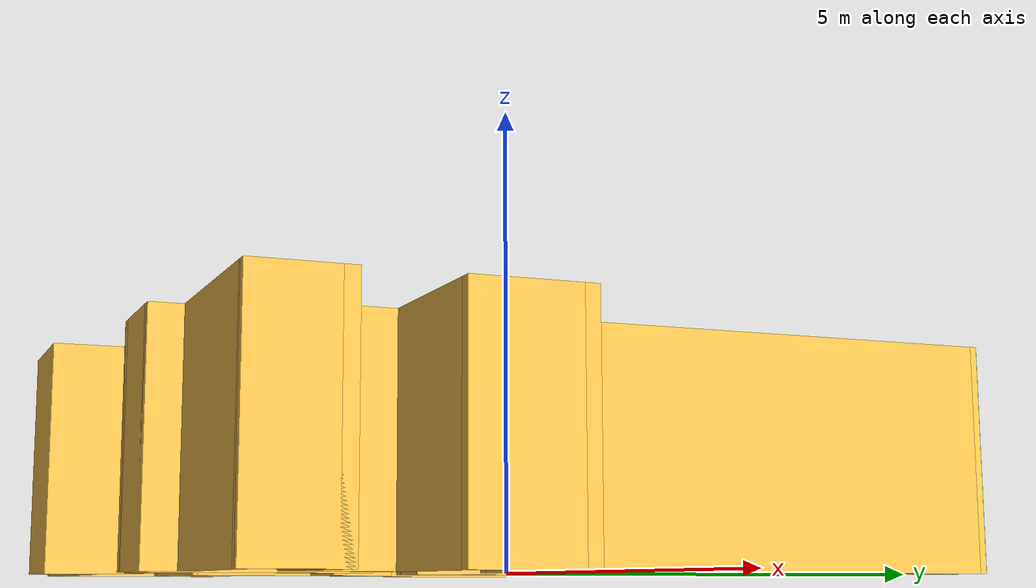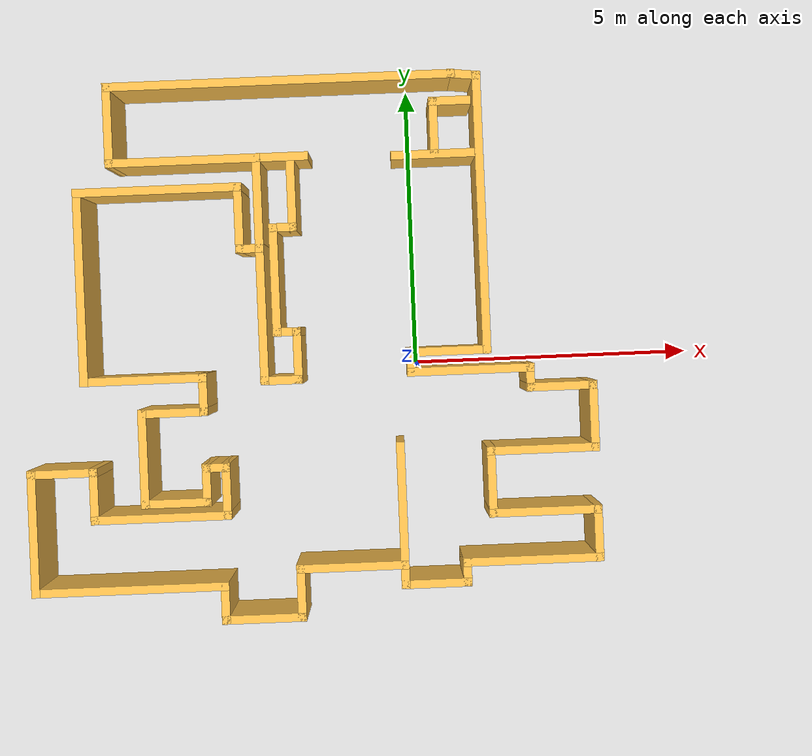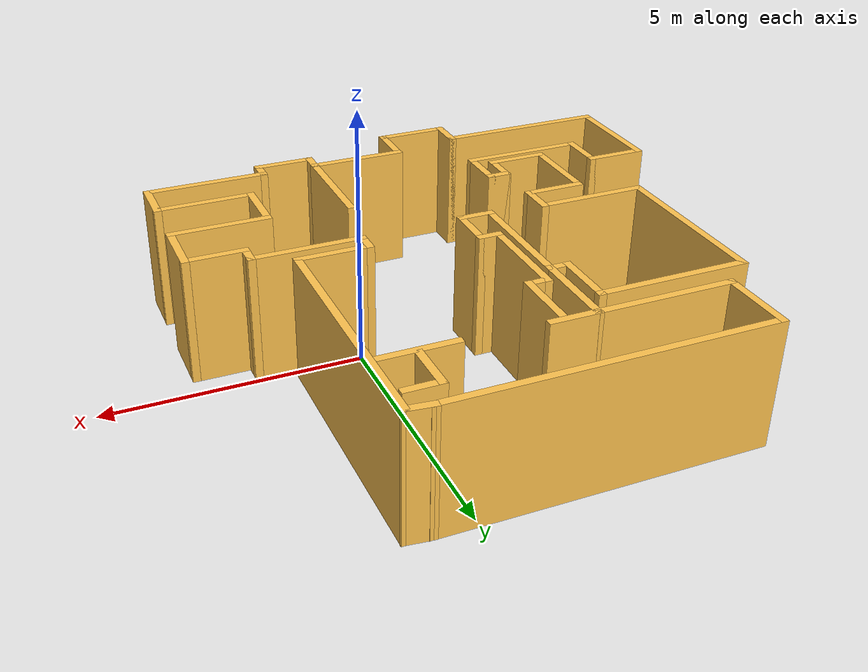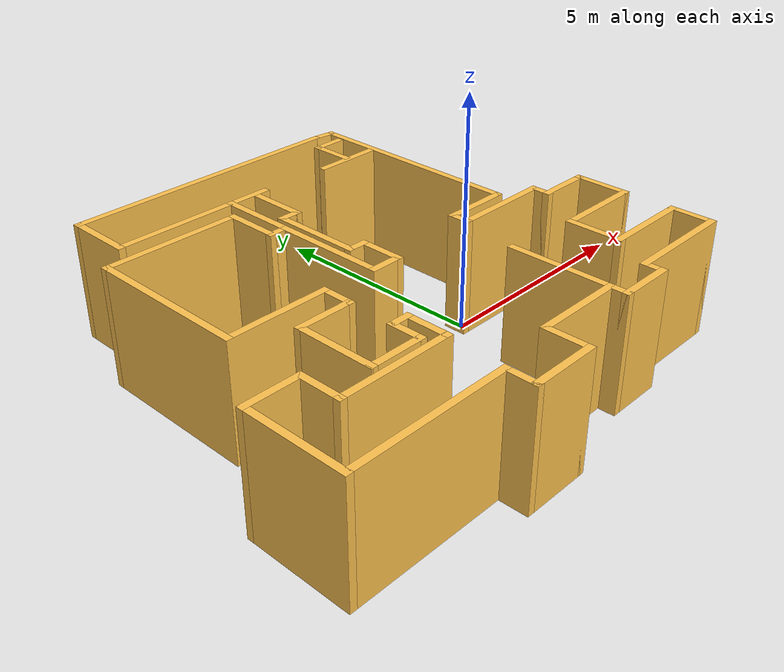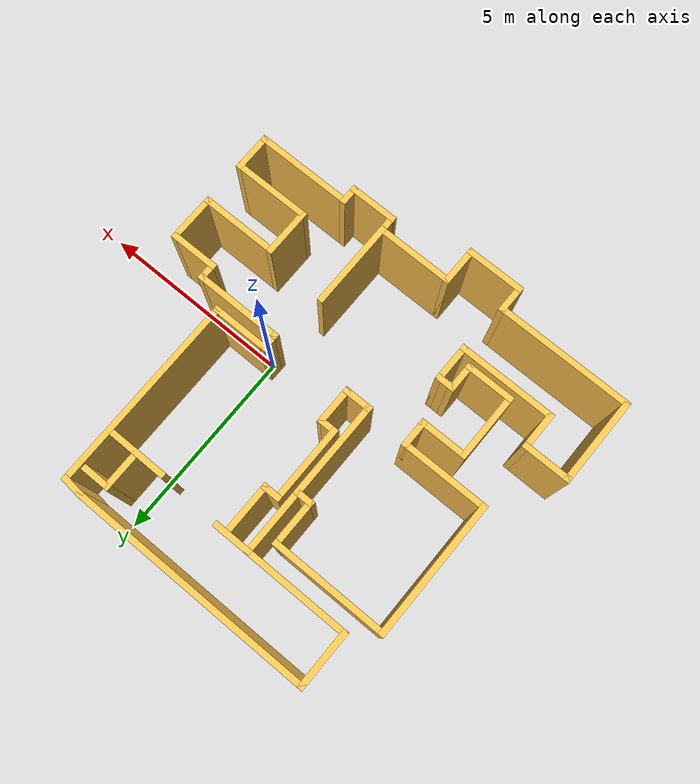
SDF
<?xml version='1.0'?>
<sdf version='1.6'>
  <model name='map_78'>
    <pose frame=''>-1.91325 0.358957 0 0 -0 0</pose>
    <link name='Wall_0'>
      <collision name='Wall_0_Collision'>
        <geometry>
          <box>
            <size>6.25 0.15 2.5</size>
          </box>
        </geometry>
        <pose frame=''>0 0 1.25 0 -0 0</pose>
      </collision>
      <visual name='Wall_0_Visual'>
        <pose frame=''>0 0 1.25 0 -0 0</pose>
        <geometry>
          <box>
            <size>6.25 0.15 2.5</size>
          </box>
        </geometry>
        <material>
          <script>
            <uri>file://media/materials/scripts/gazebo.material</uri>
            <name>Gazebo/Grey</name>
          </script>
          <ambient>1 0.764706 0.305882 1</ambient>
        </material>
        <meta>
          <layer>0</layer>
        </meta>
      </visual>
      <pose frame=''>-0.35 4.74609 0 0 -0 3.14159</pose>
    </link>
    <link name='Wall_12'>
      <collision name='Wall_12_Collision'>
        <geometry>
          <box>
            <size>0.75 0.15 2.5</size>
          </box>
        </geometry>
        <pose frame=''>0 0 1.25 0 -0 0</pose>
      </collision>
      <visual name='Wall_12_Visual'>
        <pose frame=''>0 0 1.25 0 -0 0</pose>
        <geometry>
          <box>
            <size>0.75 0.15 2.5</size>
          </box>
        </geometry>
        <material>
          <script>
            <uri>file://media/materials/scripts/gazebo.material</uri>
            <name>Gazebo/Grey</name>
          </script>
          <ambient>1 0.764706 0.305882 1</ambient>
        </material>
        <meta>
          <layer>0</layer>
        </meta>
      </visual>
      <pose frame=''>-1.9 -0.753912 0 0 -0 -1.5708</pose>
    </link>
    <link name='Wall_13'>
      <collision name='Wall_13_Collision'>
        <geometry>
          <box>
            <size>1.25 0.15 2.5</size>
          </box>
        </geometry>
        <pose frame=''>0 0 1.25 0 -0 0</pose>
      </collision>
      <visual name='Wall_13_Visual'>
        <pose frame=''>0 0 1.25 0 -0 0</pose>
        <geometry>
          <box>
            <size>1.25 0.15 2.5</size>
          </box>
        </geometry>
        <material>
          <script>
            <uri>file://media/materials/scripts/gazebo.material</uri>
            <name>Gazebo/Grey</name>
          </script>
          <ambient>1 0.764706 0.305882 1</ambient>
        </material>
        <meta>
          <layer>0</layer>
        </meta>
      </visual>
      <pose frame=''>-2.45 -1.05391 0 0 -0 3.14159</pose>
    </link>
    <link name='Wall_14'>
      <collision name='Wall_14_Collision'>
        <geometry>
          <box>
            <size>1.75 0.15 2.5</size>
          </box>
        </geometry>
        <pose frame=''>0 0 1.25 0 -0 0</pose>
      </collision>
      <visual name='Wall_14_Visual'>
        <pose frame=''>0 0 1.25 0 -0 0</pose>
        <geometry>
          <box>
            <size>1.75 0.15 2.5</size>
          </box>
        </geometry>
        <material>
          <script>
            <uri>file://media/materials/scripts/gazebo.material</uri>
            <name>Gazebo/Grey</name>
          </script>
          <ambient>1 0.764706 0.305882 1</ambient>
        </material>
        <meta>
          <layer>0</layer>
        </meta>
      </visual>
      <pose frame=''>-3 -1.85391 0 0 -0 -1.5708</pose>
    </link>
    <link name='Wall_15'>
      <collision name='Wall_15_Collision'>
        <geometry>
          <box>
            <size>1.25 0.15 2.5</size>
          </box>
        </geometry>
        <pose frame=''>0 0 1.25 0 -0 0</pose>
      </collision>
      <visual name='Wall_15_Visual'>
        <pose frame=''>0 0 1.25 0 -0 0</pose>
        <geometry>
          <box>
            <size>1.25 0.15 2.5</size>
          </box>
        </geometry>
        <material>
          <script>
            <uri>file://media/materials/scripts/gazebo.material</uri>
            <name>Gazebo/Grey</name>
          </script>
          <ambient>1 0.764706 0.305882 1</ambient>
        </material>
        <meta>
          <layer>0</layer>
        </meta>
      </visual>
      <pose frame=''>-2.45 -2.65391 0 0 -0 0</pose>
    </link>
    <link name='Wall_16'>
      <collision name='Wall_16_Collision'>
        <geometry>
          <box>
            <size>0.75 0.15 2.5</size>
          </box>
        </geometry>
        <pose frame=''>0 0 1.25 0 -0 0</pose>
      </collision>
      <visual name='Wall_16_Visual'>
        <pose frame=''>0 0 1.25 0 -0 0</pose>
        <geometry>
          <box>
            <size>0.75 0.15 2.5</size>
          </box>
        </geometry>
        <material>
          <script>
            <uri>file://media/materials/scripts/gazebo.material</uri>
            <name>Gazebo/Grey</name>
          </script>
          <ambient>1 0.764706 0.305882 1</ambient>
        </material>
        <meta>
          <layer>0</layer>
        </meta>
      </visual>
      <pose frame=''>-1.9 -2.35391 0 0 -0 1.5708</pose>
    </link>
    <link name='Wall_17'>
      <collision name='Wall_17_Collision'>
        <geometry>
          <box>
            <size>0.5 0.15 2.5</size>
          </box>
        </geometry>
        <pose frame=''>0 0 1.25 0 -0 0</pose>
      </collision>
      <visual name='Wall_17_Visual'>
        <pose frame=''>0 0 1.25 0 -0 0</pose>
        <geometry>
          <box>
            <size>0.5 0.15 2.5</size>
          </box>
        </geometry>
        <material>
          <script>
            <uri>file://media/materials/scripts/gazebo.material</uri>
            <name>Gazebo/Grey</name>
          </script>
          <ambient>1 0.764706 0.305882 1</ambient>
        </material>
        <meta>
          <layer>0</layer>
        </meta>
      </visual>
      <pose frame=''>-1.725 -2.05391 0 0 -0 0</pose>
    </link>
    <link name='Wall_18'>
      <collision name='Wall_18_Collision'>
        <geometry>
          <box>
            <size>1 0.15 2.5</size>
          </box>
        </geometry>
        <pose frame=''>0 0 1.25 0 -0 0</pose>
      </collision>
      <visual name='Wall_18_Visual'>
        <pose frame=''>0 0 1.25 0 -0 0</pose>
        <geometry>
          <box>
            <size>1 0.15 2.5</size>
          </box>
        </geometry>
        <material>
          <script>
            <uri>file://media/materials/scripts/gazebo.material</uri>
            <name>Gazebo/Grey</name>
          </script>
          <ambient>1 0.764706 0.305882 1</ambient>
        </material>
        <meta>
          <layer>0</layer>
        </meta>
      </visual>
      <pose frame=''>-1.55 -2.47891 0 0 -0 -1.5708</pose>
    </link>
    <link name='Wall_19'>
      <collision name='Wall_19_Collision'>
        <geometry>
          <box>
            <size>2.5 0.15 2.5</size>
          </box>
        </geometry>
        <pose frame=''>0 0 1.25 0 -0 0</pose>
      </collision>
      <visual name='Wall_19_Visual'>
        <pose frame=''>0 0 1.25 0 -0 0</pose>
        <geometry>
          <box>
            <size>2.5 0.15 2.5</size>
          </box>
        </geometry>
        <material>
          <script>
            <uri>file://media/materials/scripts/gazebo.material</uri>
            <name>Gazebo/Grey</name>
          </script>
          <ambient>1 0.764706 0.305882 1</ambient>
        </material>
        <meta>
          <layer>0</layer>
        </meta>
      </visual>
      <pose frame=''>-2.725 -2.90391 0 0 -0 3.14159</pose>
    </link>
    <link name='Wall_2'>
      <collision name='Wall_2_Collision'>
        <geometry>
          <box>
            <size>1.5 0.15 2.5</size>
          </box>
        </geometry>
        <pose frame=''>0 0 1.25 0 -0 0</pose>
      </collision>
      <visual name='Wall_2_Visual'>
        <pose frame=''>0 0 1.25 0 -0 0</pose>
        <geometry>
          <box>
            <size>1.5 0.15 2.5</size>
          </box>
        </geometry>
        <material>
          <script>
            <uri>file://media/materials/scripts/gazebo.material</uri>
            <name>Gazebo/Grey</name>
          </script>
          <ambient>1 0.764706 0.305882 1</ambient>
        </material>
        <meta>
          <layer>0</layer>
        </meta>
      </visual>
      <pose frame=''>-3.4 4.07109 0 0 -0 -1.5708</pose>
    </link>
    <link name='Wall_20'>
      <collision name='Wall_20_Collision'>
        <geometry>
          <box>
            <size>1 0.15 2.5</size>
          </box>
        </geometry>
        <pose frame=''>0 0 1.25 0 -0 0</pose>
      </collision>
      <visual name='Wall_20_Visual'>
        <pose frame=''>0 0 1.25 0 -0 0</pose>
        <geometry>
          <box>
            <size>1 0.15 2.5</size>
          </box>
        </geometry>
        <material>
          <script>
            <uri>file://media/materials/scripts/gazebo.material</uri>
            <name>Gazebo/Grey</name>
          </script>
          <ambient>1 0.764706 0.305882 1</ambient>
        </material>
        <meta>
          <layer>0</layer>
        </meta>
      </visual>
      <pose frame=''>-3.9 -2.47891 0 0 -0 1.5708</pose>
    </link>
    <link name='Wall_21'>
      <collision name='Wall_21_Collision'>
        <geometry>
          <box>
            <size>1.25 0.15 2.5</size>
          </box>
        </geometry>
        <pose frame=''>0 0 1.25 0 -0 0</pose>
      </collision>
      <visual name='Wall_21_Visual'>
        <pose frame=''>0 0 1.25 0 -0 0</pose>
        <geometry>
          <box>
            <size>1.25 0.15 2.5</size>
          </box>
        </geometry>
        <material>
          <script>
            <uri>file://media/materials/scripts/gazebo.material</uri>
            <name>Gazebo/Grey</name>
          </script>
          <ambient>1 0.764706 0.305882 1</ambient>
        </material>
        <meta>
          <layer>0</layer>
        </meta>
      </visual>
      <pose frame=''>-4.45 -2.05391 0 0 -0 3.14159</pose>
    </link>
    <link name='Wall_22'>
      <collision name='Wall_22_Collision'>
        <geometry>
          <box>
            <size>2.25 0.15 2.5</size>
          </box>
        </geometry>
        <pose frame=''>0 0 1.25 0 -0 0</pose>
      </collision>
      <visual name='Wall_22_Visual'>
        <pose frame=''>0 0 1.25 0 -0 0</pose>
        <geometry>
          <box>
            <size>2.25 0.15 2.5</size>
          </box>
        </geometry>
        <material>
          <script>
            <uri>file://media/materials/scripts/gazebo.material</uri>
            <name>Gazebo/Grey</name>
          </script>
          <ambient>1 0.764706 0.305882 1</ambient>
        </material>
        <meta>
          <layer>0</layer>
        </meta>
      </visual>
      <pose frame=''>-5 -3.10391 0 0 -0 -1.5708</pose>
    </link>
    <link name='Wall_23'>
      <collision name='Wall_23_Collision'>
        <geometry>
          <box>
            <size>3.5 0.15 2.5</size>
          </box>
        </geometry>
        <pose frame=''>0 0 1.25 0 -0 0</pose>
      </collision>
      <visual name='Wall_23_Visual'>
        <pose frame=''>0 0 1.25 0 -0 0</pose>
        <geometry>
          <box>
            <size>3.5 0.15 2.5</size>
          </box>
        </geometry>
        <material>
          <script>
            <uri>file://media/materials/scripts/gazebo.material</uri>
            <name>Gazebo/Grey</name>
          </script>
          <ambient>1 0.764706 0.305882 1</ambient>
        </material>
        <meta>
          <layer>0</layer>
        </meta>
      </visual>
      <pose frame=''>-3.325 -4.15391 0 0 -0 0</pose>
    </link>
    <link name='Wall_24'>
      <collision name='Wall_24_Collision'>
        <geometry>
          <box>
            <size>0.75 0.15 2.5</size>
          </box>
        </geometry>
        <pose frame=''>0 0 1.25 0 -0 0</pose>
      </collision>
      <visual name='Wall_24_Visual'>
        <pose frame=''>0 0 1.25 0 -0 0</pose>
        <geometry>
          <box>
            <size>0.75 0.15 2.5</size>
          </box>
        </geometry>
        <material>
          <script>
            <uri>file://media/materials/scripts/gazebo.material</uri>
            <name>Gazebo/Grey</name>
          </script>
          <ambient>1 0.764706 0.305882 1</ambient>
        </material>
        <meta>
          <layer>0</layer>
        </meta>
      </visual>
      <pose frame=''>-1.65 -4.45391 0 0 -0 -1.5708</pose>
    </link>
    <link name='Wall_25'>
      <collision name='Wall_25_Collision'>
        <geometry>
          <box>
            <size>1.5 0.15 2.5</size>
          </box>
        </geometry>
        <pose frame=''>0 0 1.25 0 -0 0</pose>
      </collision>
      <visual name='Wall_25_Visual'>
        <pose frame=''>0 0 1.25 0 -0 0</pose>
        <geometry>
          <box>
            <size>1.5 0.15 2.5</size>
          </box>
        </geometry>
        <material>
          <script>
            <uri>file://media/materials/scripts/gazebo.material</uri>
            <name>Gazebo/Grey</name>
          </script>
          <ambient>1 0.764706 0.305882 1</ambient>
        </material>
        <meta>
          <layer>0</layer>
        </meta>
      </visual>
      <pose frame=''>-0.975 -4.75391 0 0 -0 0</pose>
    </link>
    <link name='Wall_26'>
      <collision name='Wall_26_Collision'>
        <geometry>
          <box>
            <size>1 0.15 2.5</size>
          </box>
        </geometry>
        <pose frame=''>0 0 1.25 0 -0 0</pose>
      </collision>
      <visual name='Wall_26_Visual'>
        <pose frame=''>0 0 1.25 0 -0 0</pose>
        <geometry>
          <box>
            <size>1 0.15 2.5</size>
          </box>
        </geometry>
        <material>
          <script>
            <uri>file://media/materials/scripts/gazebo.material</uri>
            <name>Gazebo/Grey</name>
          </script>
          <ambient>1 0.764706 0.305882 1</ambient>
        </material>
        <meta>
          <layer>0</layer>
        </meta>
      </visual>
      <pose frame=''>-0.3 -4.32891 0 0 -0 1.5708</pose>
    </link>
    <link name='Wall_27'>
      <collision name='Wall_27_Collision'>
        <geometry>
          <box>
            <size>2 0.15 2.5</size>
          </box>
        </geometry>
        <pose frame=''>0 0 1.25 0 -0 0</pose>
      </collision>
      <visual name='Wall_27_Visual'>
        <pose frame=''>0 0 1.25 0 -0 0</pose>
        <geometry>
          <box>
            <size>2 0.15 2.5</size>
          </box>
        </geometry>
        <material>
          <script>
            <uri>file://media/materials/scripts/gazebo.material</uri>
            <name>Gazebo/Grey</name>
          </script>
          <ambient>1 0.764706 0.305882 1</ambient>
        </material>
        <meta>
          <layer>0</layer>
        </meta>
      </visual>
      <pose frame=''>0.625 -3.90391 0 0 -0 0</pose>
    </link>
    <link name='Wall_28'>
      <collision name='Wall_28_Collision'>
        <geometry>
          <box>
            <size>0.5 0.15 2.5</size>
          </box>
        </geometry>
        <pose frame=''>0 0 1.25 0 -0 0</pose>
      </collision>
      <visual name='Wall_28_Visual'>
        <pose frame=''>0 0 1.25 0 -0 0</pose>
        <geometry>
          <box>
            <size>0.5 0.15 2.5</size>
          </box>
        </geometry>
        <material>
          <script>
            <uri>file://media/materials/scripts/gazebo.material</uri>
            <name>Gazebo/Grey</name>
          </script>
          <ambient>1 0.764706 0.305882 1</ambient>
        </material>
        <meta>
          <layer>0</layer>
        </meta>
      </visual>
      <pose frame=''>1.55 -4.07891 0 0 -0 -1.5708</pose>
    </link>
    <link name='Wall_29'>
      <collision name='Wall_29_Collision'>
        <geometry>
          <box>
            <size>1.25 0.15 2.5</size>
          </box>
        </geometry>
        <pose frame=''>0 0 1.25 0 -0 0</pose>
      </collision>
      <visual name='Wall_29_Visual'>
        <pose frame=''>0 0 1.25 0 -0 0</pose>
        <geometry>
          <box>
            <size>1.25 0.15 2.5</size>
          </box>
        </geometry>
        <material>
          <script>
            <uri>file://media/materials/scripts/gazebo.material</uri>
            <name>Gazebo/Grey</name>
          </script>
          <ambient>1 0.764706 0.305882 1</ambient>
        </material>
        <meta>
          <layer>0</layer>
        </meta>
      </visual>
      <pose frame=''>2.1 -4.25391 0 0 -0 0</pose>
    </link>
    <link name='Wall_3'>
      <collision name='Wall_3_Collision'>
        <geometry>
          <box>
            <size>2.75 0.15 2.5</size>
          </box>
        </geometry>
        <pose frame=''>0 0 1.25 0 -0 0</pose>
      </collision>
      <visual name='Wall_3_Visual'>
        <pose frame=''>0 0 1.25 0 -0 0</pose>
        <geometry>
          <box>
            <size>2.75 0.15 2.5</size>
          </box>
        </geometry>
        <material>
          <script>
            <uri>file://media/materials/scripts/gazebo.material</uri>
            <name>Gazebo/Grey</name>
          </script>
          <ambient>1 0.764706 0.305882 1</ambient>
        </material>
        <meta>
          <layer>0</layer>
        </meta>
      </visual>
      <pose frame=''>-2.1 3.39609 0 0 -0 0</pose>
    </link>
    <link name='Wall_30'>
      <collision name='Wall_30_Collision'>
        <geometry>
          <box>
            <size>0.5 0.15 2.5</size>
          </box>
        </geometry>
        <pose frame=''>0 0 1.25 0 -0 0</pose>
      </collision>
      <visual name='Wall_30_Visual'>
        <pose frame=''>0 0 1.25 0 -0 0</pose>
        <geometry>
          <box>
            <size>0.5 0.15 2.5</size>
          </box>
        </geometry>
        <material>
          <script>
            <uri>file://media/materials/scripts/gazebo.material</uri>
            <name>Gazebo/Grey</name>
          </script>
          <ambient>1 0.764706 0.305882 1</ambient>
        </material>
        <meta>
          <layer>0</layer>
        </meta>
      </visual>
      <pose frame=''>2.65 -4.07891 0 0 -0 1.5708</pose>
    </link>
    <link name='Wall_31'>
      <collision name='Wall_31_Collision'>
        <geometry>
          <box>
            <size>2.5 0.15 2.5</size>
          </box>
        </geometry>
        <pose frame=''>0 0 1.25 0 -0 0</pose>
      </collision>
      <visual name='Wall_31_Visual'>
        <pose frame=''>0 0 1.25 0 -0 0</pose>
        <geometry>
          <box>
            <size>2.5 0.15 2.5</size>
          </box>
        </geometry>
        <material>
          <script>
            <uri>file://media/materials/scripts/gazebo.material</uri>
            <name>Gazebo/Grey</name>
          </script>
          <ambient>1 0.764706 0.305882 1</ambient>
        </material>
        <meta>
          <layer>0</layer>
        </meta>
      </visual>
      <pose frame=''>3.825 -3.90391 0 0 -0 0</pose>
    </link>
    <link name='Wall_32'>
      <collision name='Wall_32_Collision'>
        <geometry>
          <box>
            <size>1 0.15 2.5</size>
          </box>
        </geometry>
        <pose frame=''>0 0 1.25 0 -0 0</pose>
      </collision>
      <visual name='Wall_32_Visual'>
        <pose frame=''>0 0 1.25 0 -0 0</pose>
        <geometry>
          <box>
            <size>1 0.15 2.5</size>
          </box>
        </geometry>
        <material>
          <script>
            <uri>file://media/materials/scripts/gazebo.material</uri>
            <name>Gazebo/Grey</name>
          </script>
          <ambient>1 0.764706 0.305882 1</ambient>
        </material>
        <meta>
          <layer>0</layer>
        </meta>
      </visual>
      <pose frame=''>5 -3.47891 0 0 -0 1.5708</pose>
    </link>
    <link name='Wall_33'>
      <collision name='Wall_33_Collision'>
        <geometry>
          <box>
            <size>2 0.15 2.5</size>
          </box>
        </geometry>
        <pose frame=''>0 0 1.25 0 -0 0</pose>
      </collision>
      <visual name='Wall_33_Visual'>
        <pose frame=''>0 0 1.25 0 -0 0</pose>
        <geometry>
          <box>
            <size>2 0.15 2.5</size>
          </box>
        </geometry>
        <material>
          <script>
            <uri>file://media/materials/scripts/gazebo.material</uri>
            <name>Gazebo/Grey</name>
          </script>
          <ambient>1 0.764706 0.305882 1</ambient>
        </material>
        <meta>
          <layer>0</layer>
        </meta>
      </visual>
      <pose frame=''>4.075 -3.05391 0 0 -0 3.14159</pose>
    </link>
    <link name='Wall_34'>
      <collision name='Wall_34_Collision'>
        <geometry>
          <box>
            <size>1.25 0.15 2.5</size>
          </box>
        </geometry>
        <pose frame=''>0 0 1.25 0 -0 0</pose>
      </collision>
      <visual name='Wall_34_Visual'>
        <pose frame=''>0 0 1.25 0 -0 0</pose>
        <geometry>
          <box>
            <size>1.25 0.15 2.5</size>
          </box>
        </geometry>
        <material>
          <script>
            <uri>file://media/materials/scripts/gazebo.material</uri>
            <name>Gazebo/Grey</name>
          </script>
          <ambient>1 0.764706 0.305882 1</ambient>
        </material>
        <meta>
          <layer>0</layer>
        </meta>
      </visual>
      <pose frame=''>3.15 -2.50391 0 0 -0 1.5708</pose>
    </link>
    <link name='Wall_35'>
      <collision name='Wall_35_Collision'>
        <geometry>
          <box>
            <size>2 0.15 2.5</size>
          </box>
        </geometry>
        <pose frame=''>0 0 1.25 0 -0 0</pose>
      </collision>
      <visual name='Wall_35_Visual'>
        <pose frame=''>0 0 1.25 0 -0 0</pose>
        <geometry>
          <box>
            <size>2 0.15 2.5</size>
          </box>
        </geometry>
        <material>
          <script>
            <uri>file://media/materials/scripts/gazebo.material</uri>
            <name>Gazebo/Grey</name>
          </script>
          <ambient>1 0.764706 0.305882 1</ambient>
        </material>
        <meta>
          <layer>0</layer>
        </meta>
      </visual>
      <pose frame=''>4.075 -1.95391 0 0 -0 0</pose>
    </link>
    <link name='Wall_36'>
      <collision name='Wall_36_Collision'>
        <geometry>
          <box>
            <size>1.25 0.15 2.5</size>
          </box>
        </geometry>
        <pose frame=''>0 0 1.25 0 -0 0</pose>
      </collision>
      <visual name='Wall_36_Visual'>
        <pose frame=''>0 0 1.25 0 -0 0</pose>
        <geometry>
          <box>
            <size>1.25 0.15 2.5</size>
          </box>
        </geometry>
        <material>
          <script>
            <uri>file://media/materials/scripts/gazebo.material</uri>
            <name>Gazebo/Grey</name>
          </script>
          <ambient>1 0.764706 0.305882 1</ambient>
        </material>
        <meta>
          <layer>0</layer>
        </meta>
      </visual>
      <pose frame=''>5 -1.40391 0 0 -0 1.5708</pose>
    </link>
    <link name='Wall_37'>
      <collision name='Wall_37_Collision'>
        <geometry>
          <box>
            <size>1.25 0.15 2.5</size>
          </box>
        </geometry>
        <pose frame=''>0 0 1.25 0 -0 0</pose>
      </collision>
      <visual name='Wall_37_Visual'>
        <pose frame=''>0 0 1.25 0 -0 0</pose>
        <geometry>
          <box>
            <size>1.25 0.15 2.5</size>
          </box>
        </geometry>
        <material>
          <script>
            <uri>file://media/materials/scripts/gazebo.material</uri>
            <name>Gazebo/Grey</name>
          </script>
          <ambient>1 0.764706 0.305882 1</ambient>
        </material>
        <meta>
          <layer>0</layer>
        </meta>
      </visual>
      <pose frame=''>4.45 -0.853912 0 0 -0 3.14159</pose>
    </link>
    <link name='Wall_38'>
      <collision name='Wall_38_Collision'>
        <geometry>
          <box>
            <size>0.5 0.15 2.5</size>
          </box>
        </geometry>
        <pose frame=''>0 0 1.25 0 -0 0</pose>
      </collision>
      <visual name='Wall_38_Visual'>
        <pose frame=''>0 0 1.25 0 -0 0</pose>
        <geometry>
          <box>
            <size>0.5 0.15 2.5</size>
          </box>
        </geometry>
        <material>
          <script>
            <uri>file://media/materials/scripts/gazebo.material</uri>
            <name>Gazebo/Grey</name>
          </script>
          <ambient>1 0.764706 0.305882 1</ambient>
        </material>
        <meta>
          <layer>0</layer>
        </meta>
      </visual>
      <pose frame=''>3.9 -0.678912 0 0 -0 1.5708</pose>
    </link>
    <link name='Wall_39'>
      <collision name='Wall_39_Collision'>
        <geometry>
          <box>
            <size>2.25 0.15 2.5</size>
          </box>
        </geometry>
        <pose frame=''>0 0 1.25 0 -0 0</pose>
      </collision>
      <visual name='Wall_39_Visual'>
        <pose frame=''>0 0 1.25 0 -0 0</pose>
        <geometry>
          <box>
            <size>2.25 0.15 2.5</size>
          </box>
        </geometry>
        <material>
          <script>
            <uri>file://media/materials/scripts/gazebo.material</uri>
            <name>Gazebo/Grey</name>
          </script>
          <ambient>1 0.764706 0.305882 1</ambient>
        </material>
        <meta>
          <layer>0</layer>
        </meta>
      </visual>
      <pose frame=''>2.85 -0.503912 0 0 -0 3.14159</pose>
    </link>
    <link name='Wall_4'>
      <collision name='Wall_4_Collision'>
        <geometry>
          <box>
            <size>1.75 0.15 2.5</size>
          </box>
        </geometry>
        <pose frame=''>0 0 1.25 0 -0 0</pose>
      </collision>
      <visual name='Wall_4_Visual'>
        <pose frame=''>0 0 1.25 0 -0 0</pose>
        <geometry>
          <box>
            <size>1.75 0.15 2.5</size>
          </box>
        </geometry>
        <material>
          <script>
            <uri>file://media/materials/scripts/gazebo.material</uri>
            <name>Gazebo/Grey</name>
          </script>
          <ambient>1 0.764706 0.305882 1</ambient>
        </material>
        <meta>
          <layer>0</layer>
        </meta>
      </visual>
      <pose frame=''>-0.8 2.59609 0 0 -0 -1.5708</pose>
    </link>
    <link name='Wall_46'>
      <collision name='Wall_46_Collision'>
        <geometry>
          <box>
            <size>0.5 0.15 2.5</size>
          </box>
        </geometry>
        <pose frame=''>0 0 1.25 0 -0 0</pose>
      </collision>
      <visual name='Wall_46_Visual'>
        <pose frame=''>0 0 1.25 0 -0 0</pose>
        <geometry>
          <box>
            <size>0.5 0.15 2.5</size>
          </box>
        </geometry>
        <material>
          <script>
            <uri>file://media/materials/scripts/gazebo.material</uri>
            <name>Gazebo/Grey</name>
          </script>
          <ambient>1 0.764706 0.305882 1</ambient>
        </material>
        <meta>
          <layer>0</layer>
        </meta>
      </visual>
      <pose frame=''>1.8 -0.328912 0 0 -0 1.5708</pose>
    </link>
    <link name='Wall_47'>
      <collision name='Wall_47_Collision'>
        <geometry>
          <box>
            <size>1.5 0.15 2.5</size>
          </box>
        </geometry>
        <pose frame=''>0 0 1.25 0 -0 0</pose>
      </collision>
      <visual name='Wall_47_Visual'>
        <pose frame=''>0 0 1.25 0 -0 0</pose>
        <geometry>
          <box>
            <size>1.5 0.15 2.5</size>
          </box>
        </geometry>
        <material>
          <script>
            <uri>file://media/materials/scripts/gazebo.material</uri>
            <name>Gazebo/Grey</name>
          </script>
          <ambient>1 0.764706 0.305882 1</ambient>
        </material>
        <meta>
          <layer>0</layer>
        </meta>
      </visual>
      <pose frame=''>2.475 -0.153912 0 0 -0 0</pose>
    </link>
    <link name='Wall_5'>
      <collision name='Wall_5_Collision'>
        <geometry>
          <box>
            <size>0.5 0.15 2.5</size>
          </box>
        </geometry>
        <pose frame=''>0 0 1.25 0 -0 0</pose>
      </collision>
      <visual name='Wall_5_Visual'>
        <pose frame=''>0 0 1.25 0 -0 0</pose>
        <geometry>
          <box>
            <size>0.5 0.15 2.5</size>
          </box>
        </geometry>
        <material>
          <script>
            <uri>file://media/materials/scripts/gazebo.material</uri>
            <name>Gazebo/Grey</name>
          </script>
          <ambient>1 0.764706 0.305882 1</ambient>
        </material>
        <meta>
          <layer>0</layer>
        </meta>
      </visual>
      <pose frame=''>-0.975 1.79609 0 0 -0 3.14159</pose>
    </link>
    <link name='Wall_50'>
      <collision name='Wall_50_Collision'>
        <geometry>
          <box>
            <size>5 0.15 2.5</size>
          </box>
        </geometry>
        <pose frame=''>0 0 1.25 0 -0 0</pose>
      </collision>
      <visual name='Wall_50_Visual'>
        <pose frame=''>0 0 1.25 0 -0 0</pose>
        <geometry>
          <box>
            <size>5 0.15 2.5</size>
          </box>
        </geometry>
        <material>
          <script>
            <uri>file://media/materials/scripts/gazebo.material</uri>
            <name>Gazebo/Grey</name>
          </script>
          <ambient>1 0.764706 0.305882 1</ambient>
        </material>
        <meta>
          <layer>0</layer>
        </meta>
      </visual>
      <pose frame=''>3.15 2.27109 0 0 -0 1.5708</pose>
    </link>
    <link name='Wall_51'>
      <collision name='Wall_51_Collision'>
        <geometry>
          <box>
            <size>0.602769 0.15 2.5</size>
          </box>
        </geometry>
        <pose frame=''>0 0 1.25 0 -0 0</pose>
      </collision>
      <visual name='Wall_51_Visual'>
        <pose frame=''>0 0 1.25 0 -0 0</pose>
        <geometry>
          <box>
            <size>0.602769 0.15 2.5</size>
          </box>
        </geometry>
        <material>
          <script>
            <uri>file://media/materials/scripts/gazebo.material</uri>
            <name>Gazebo/Grey</name>
          </script>
          <ambient>1 0.764706 0.305882 1</ambient>
        </material>
        <meta>
          <layer>0</layer>
        </meta>
      </visual>
      <pose frame=''>2.925 4.72109 0 0 -0 3.03093</pose>
    </link>
    <link name='Wall_53'>
      <collision name='Wall_53_Collision'>
        <geometry>
          <box>
            <size>1.5 0.15 2.5</size>
          </box>
        </geometry>
        <pose frame=''>0 0 1.25 0 -0 0</pose>
      </collision>
      <visual name='Wall_53_Visual'>
        <pose frame=''>0 0 1.25 0 -0 0</pose>
        <geometry>
          <box>
            <size>1.5 0.15 2.5</size>
          </box>
        </geometry>
        <material>
          <script>
            <uri>file://media/materials/scripts/gazebo.material</uri>
            <name>Gazebo/Grey</name>
          </script>
          <ambient>1 0.764706 0.305882 1</ambient>
        </material>
        <meta>
          <layer>0</layer>
        </meta>
      </visual>
      <pose frame=''>2.33759 3.33628 0 0 -0 0</pose>
    </link>
    <link name='Wall_55'>
      <collision name='Wall_55_Collision'>
        <geometry>
          <box>
            <size>0.75 0.15 2.5</size>
          </box>
        </geometry>
        <pose frame=''>0 0 1.25 0 -0 0</pose>
      </collision>
      <visual name='Wall_55_Visual'>
        <pose frame=''>0 0 1.25 0 -0 0</pose>
        <geometry>
          <box>
            <size>0.75 0.15 2.5</size>
          </box>
        </geometry>
        <material>
          <script>
            <uri>file://media/materials/scripts/gazebo.material</uri>
            <name>Gazebo/Grey</name>
          </script>
          <ambient>1 0.764706 0.305882 1</ambient>
        </material>
        <meta>
          <layer>0</layer>
        </meta>
      </visual>
      <pose frame=''>2.666 4.26729 0 0 -0 3.14159</pose>
    </link>
    <link name='Wall_56'>
      <collision name='Wall_56_Collision'>
        <geometry>
          <box>
            <size>1 0.15 2.5</size>
          </box>
        </geometry>
        <pose frame=''>0 0 1.25 0 -0 0</pose>
      </collision>
      <visual name='Wall_56_Visual'>
        <pose frame=''>0 0 1.25 0 -0 0</pose>
        <geometry>
          <box>
            <size>1 0.15 2.5</size>
          </box>
        </geometry>
        <material>
          <script>
            <uri>file://media/materials/scripts/gazebo.material</uri>
            <name>Gazebo/Grey</name>
          </script>
          <ambient>1 0.764706 0.305882 1</ambient>
        </material>
        <meta>
          <layer>0</layer>
        </meta>
      </visual>
      <pose frame=''>2.366 3.84228 0 0 -0 -1.5708</pose>
    </link>
    <link name='Wall_58'>
      <collision name='Wall_58_Collision'>
        <geometry>
          <box>
            <size>1 0.15 2.5</size>
          </box>
        </geometry>
        <pose frame=''>0 0 1.25 0 -0 0</pose>
      </collision>
      <visual name='Wall_58_Visual'>
        <pose frame=''>0 0 1.25 0 -0 0</pose>
        <geometry>
          <box>
            <size>1 0.15 2.5</size>
          </box>
        </geometry>
        <material>
          <script>
            <uri>file://media/materials/scripts/gazebo.material</uri>
            <name>Gazebo/Grey</name>
          </script>
          <ambient>1 0.764706 0.305882 1</ambient>
        </material>
        <meta>
          <layer>0</layer>
        </meta>
      </visual>
      <pose frame=''>-0.375 3.39609 0 0 -0 0</pose>
    </link>
    <link name='Wall_6'>
      <collision name='Wall_6_Collision'>
        <geometry>
          <box>
            <size>1.25 0.15 2.5</size>
          </box>
        </geometry>
        <pose frame=''>0 0 1.25 0 -0 0</pose>
      </collision>
      <visual name='Wall_6_Visual'>
        <pose frame=''>0 0 1.25 0 -0 0</pose>
        <geometry>
          <box>
            <size>1.25 0.15 2.5</size>
          </box>
        </geometry>
        <material>
          <script>
            <uri>file://media/materials/scripts/gazebo.material</uri>
            <name>Gazebo/Grey</name>
          </script>
          <ambient>1 0.764706 0.305882 1</ambient>
        </material>
        <meta>
          <layer>0</layer>
        </meta>
      </visual>
      <pose frame=''>-1.15 2.34609 0 0 -0 1.5708</pose>
    </link>
    <link name='Wall_60'>
      <collision name='Wall_60_Collision'>
        <geometry>
          <box>
            <size>2.5 0.15 2.5</size>
          </box>
        </geometry>
        <pose frame=''>0 0 1.25 0 -0 0</pose>
      </collision>
      <visual name='Wall_60_Visual'>
        <pose frame=''>0 0 1.25 0 -0 0</pose>
        <geometry>
          <box>
            <size>2.5 0.15 2.5</size>
          </box>
        </geometry>
        <material>
          <script>
            <uri>file://media/materials/scripts/gazebo.material</uri>
            <name>Gazebo/Grey</name>
          </script>
          <ambient>1 0.764706 0.305882 1</ambient>
        </material>
        <meta>
          <layer>0</layer>
        </meta>
      </visual>
      <pose frame=''>-0.8 0.621088 0 0 -0 -1.5708</pose>
    </link>
    <link name='Wall_61'>
      <collision name='Wall_61_Collision'>
        <geometry>
          <box>
            <size>0.75 0.15 2.5</size>
          </box>
        </geometry>
        <pose frame=''>0 0 1.25 0 -0 0</pose>
      </collision>
      <visual name='Wall_61_Visual'>
        <pose frame=''>0 0 1.25 0 -0 0</pose>
        <geometry>
          <box>
            <size>0.75 0.15 2.5</size>
          </box>
        </geometry>
        <material>
          <script>
            <uri>file://media/materials/scripts/gazebo.material</uri>
            <name>Gazebo/Grey</name>
          </script>
          <ambient>1 0.764706 0.305882 1</ambient>
        </material>
        <meta>
          <layer>0</layer>
        </meta>
      </visual>
      <pose frame=''>-0.5 -0.553912 0 0 -0 0</pose>
    </link>
    <link name='Wall_62'>
      <collision name='Wall_62_Collision'>
        <geometry>
          <box>
            <size>1 0.15 2.5</size>
          </box>
        </geometry>
        <pose frame=''>0 0 1.25 0 -0 0</pose>
      </collision>
      <visual name='Wall_62_Visual'>
        <pose frame=''>0 0 1.25 0 -0 0</pose>
        <geometry>
          <box>
            <size>1 0.15 2.5</size>
          </box>
        </geometry>
        <material>
          <script>
            <uri>file://media/materials/scripts/gazebo.material</uri>
            <name>Gazebo/Grey</name>
          </script>
          <ambient>1 0.764706 0.305882 1</ambient>
        </material>
        <meta>
          <layer>0</layer>
        </meta>
      </visual>
      <pose frame=''>-0.2 -0.128912 0 0 -0 1.5708</pose>
    </link>
    <link name='Wall_63'>
      <collision name='Wall_63_Collision'>
        <geometry>
          <box>
            <size>0.5 0.15 2.5</size>
          </box>
        </geometry>
        <pose frame=''>0 0 1.25 0 -0 0</pose>
      </collision>
      <visual name='Wall_63_Visual'>
        <pose frame=''>0 0 1.25 0 -0 0</pose>
        <geometry>
          <box>
            <size>0.5 0.15 2.5</size>
          </box>
        </geometry>
        <material>
          <script>
            <uri>file://media/materials/scripts/gazebo.material</uri>
            <name>Gazebo/Grey</name>
          </script>
          <ambient>1 0.764706 0.305882 1</ambient>
        </material>
        <meta>
          <layer>0</layer>
        </meta>
      </visual>
      <pose frame=''>-0.375 0.296088 0 0 -0 3.14159</pose>
    </link>
    <link name='Wall_64'>
      <collision name='Wall_64_Collision'>
        <geometry>
          <box>
            <size>2 0.15 2.5</size>
          </box>
        </geometry>
        <pose frame=''>0 0 1.25 0 -0 0</pose>
      </collision>
      <visual name='Wall_64_Visual'>
        <pose frame=''>0 0 1.25 0 -0 0</pose>
        <geometry>
          <box>
            <size>2 0.15 2.5</size>
          </box>
        </geometry>
        <material>
          <script>
            <uri>file://media/materials/scripts/gazebo.material</uri>
            <name>Gazebo/Grey</name>
          </script>
          <ambient>1 0.764706 0.305882 1</ambient>
        </material>
        <meta>
          <layer>0</layer>
        </meta>
      </visual>
      <pose frame=''>-0.55 1.22109 0 0 -0 1.5708</pose>
    </link>
    <link name='Wall_65'>
      <collision name='Wall_65_Collision'>
        <geometry>
          <box>
            <size>0.5 0.15 2.5</size>
          </box>
        </geometry>
        <pose frame=''>0 0 1.25 0 -0 0</pose>
      </collision>
      <visual name='Wall_65_Visual'>
        <pose frame=''>0 0 1.25 0 -0 0</pose>
        <geometry>
          <box>
            <size>0.5 0.15 2.5</size>
          </box>
        </geometry>
        <material>
          <script>
            <uri>file://media/materials/scripts/gazebo.material</uri>
            <name>Gazebo/Grey</name>
          </script>
          <ambient>1 0.764706 0.305882 1</ambient>
        </material>
        <meta>
          <layer>0</layer>
        </meta>
      </visual>
      <pose frame=''>-0.375 2.14609 0 0 -0 0</pose>
    </link>
    <link name='Wall_66'>
      <collision name='Wall_66_Collision'>
        <geometry>
          <box>
            <size>1.25 0.15 2.5</size>
          </box>
        </geometry>
        <pose frame=''>0 0 1.25 0 -0 0</pose>
      </collision>
      <visual name='Wall_66_Visual'>
        <pose frame=''>0 0 1.25 0 -0 0</pose>
        <geometry>
          <box>
            <size>1.25 0.15 2.5</size>
          </box>
        </geometry>
        <material>
          <script>
            <uri>file://media/materials/scripts/gazebo.material</uri>
            <name>Gazebo/Grey</name>
          </script>
          <ambient>1 0.764706 0.305882 1</ambient>
        </material>
        <meta>
          <layer>0</layer>
        </meta>
      </visual>
      <pose frame=''>-0.2 2.69609 0 0 -0 1.5708</pose>
    </link>
    <link name='Wall_69'>
      <collision name='Wall_69_Collision'>
        <geometry>
          <box>
            <size>2.25 0.15 2.5</size>
          </box>
        </geometry>
        <pose frame=''>0 0 1.25 0 -0 0</pose>
      </collision>
      <visual name='Wall_69_Visual'>
        <pose frame=''>0 0 1.25 0 -0 0</pose>
        <geometry>
          <box>
            <size>2.25 0.15 2.5</size>
          </box>
        </geometry>
        <material>
          <script>
            <uri>file://media/materials/scripts/gazebo.material</uri>
            <name>Gazebo/Grey</name>
          </script>
          <ambient>1 0.764706 0.305882 1</ambient>
        </material>
        <meta>
          <layer>0</layer>
        </meta>
      </visual>
      <pose frame=''>1.55 -2.85391 0 0 -0 1.5708</pose>
    </link>
    <link name='Wall_7'>
      <collision name='Wall_7_Collision'>
        <geometry>
          <box>
            <size>3 0.15 2.5</size>
          </box>
        </geometry>
        <pose frame=''>0 0 1.25 0 -0 0</pose>
      </collision>
      <visual name='Wall_7_Visual'>
        <pose frame=''>0 0 1.25 0 -0 0</pose>
        <geometry>
          <box>
            <size>3 0.15 2.5</size>
          </box>
        </geometry>
        <material>
          <script>
            <uri>file://media/materials/scripts/gazebo.material</uri>
            <name>Gazebo/Grey</name>
          </script>
          <ambient>1 0.764706 0.305882 1</ambient>
        </material>
        <meta>
          <layer>0</layer>
        </meta>
      </visual>
      <pose frame=''>-2.575 2.89609 0 0 -0 3.14159</pose>
    </link>
    <link name='Wall_8'>
      <collision name='Wall_8_Collision'>
        <geometry>
          <box>
            <size>3.5 0.15 2.5</size>
          </box>
        </geometry>
        <pose frame=''>0 0 1.25 0 -0 0</pose>
      </collision>
      <visual name='Wall_8_Visual'>
        <pose frame=''>0 0 1.25 0 -0 0</pose>
        <geometry>
          <box>
            <size>3.5 0.15 2.5</size>
          </box>
        </geometry>
        <material>
          <script>
            <uri>file://media/materials/scripts/gazebo.material</uri>
            <name>Gazebo/Grey</name>
          </script>
          <ambient>1 0.764706 0.305882 1</ambient>
        </material>
        <meta>
          <layer>0</layer>
        </meta>
      </visual>
      <pose frame=''>-4 1.22109 0 0 -0 -1.5708</pose>
    </link>
    <link name='Wall_9'>
      <collision name='Wall_9_Collision'>
        <geometry>
          <box>
            <size>2.25 0.15 2.5</size>
          </box>
        </geometry>
        <pose frame=''>0 0 1.25 0 -0 0</pose>
      </collision>
      <visual name='Wall_9_Visual'>
        <pose frame=''>0 0 1.25 0 -0 0</pose>
        <geometry>
          <box>
            <size>2.25 0.15 2.5</size>
          </box>
        </geometry>
        <material>
          <script>
            <uri>file://media/materials/scripts/gazebo.material</uri>
            <name>Gazebo/Grey</name>
          </script>
          <ambient>1 0.764706 0.305882 1</ambient>
        </material>
        <meta>
          <layer>0</layer>
        </meta>
      </visual>
      <pose frame=''>-2.95 -0.453912 0 0 -0 0</pose>
    </link>
    <static>1</static>
  </model>
</sdf>
